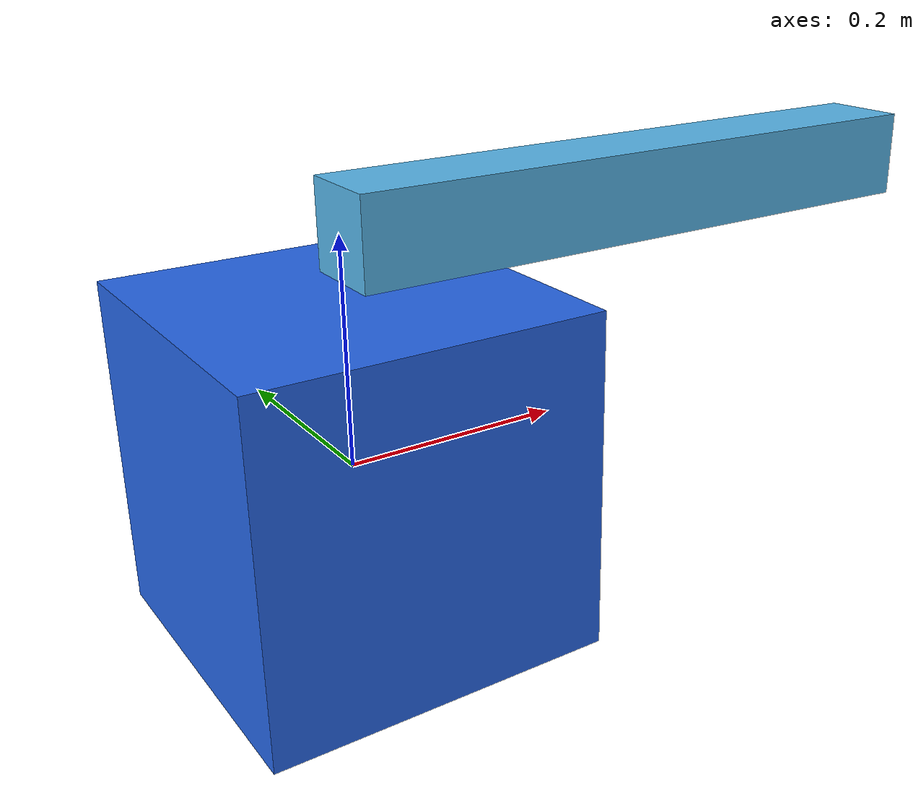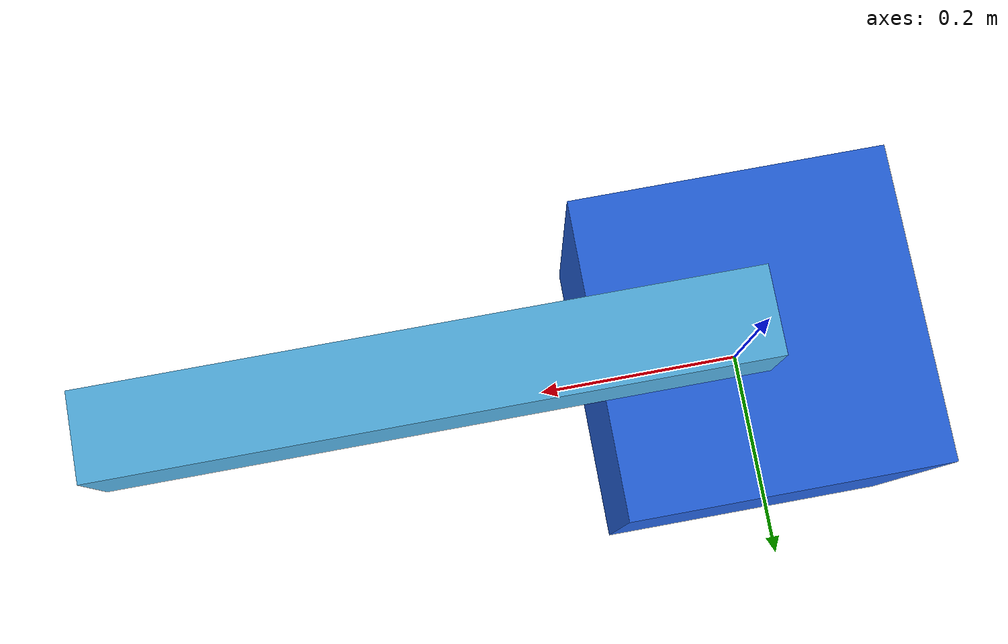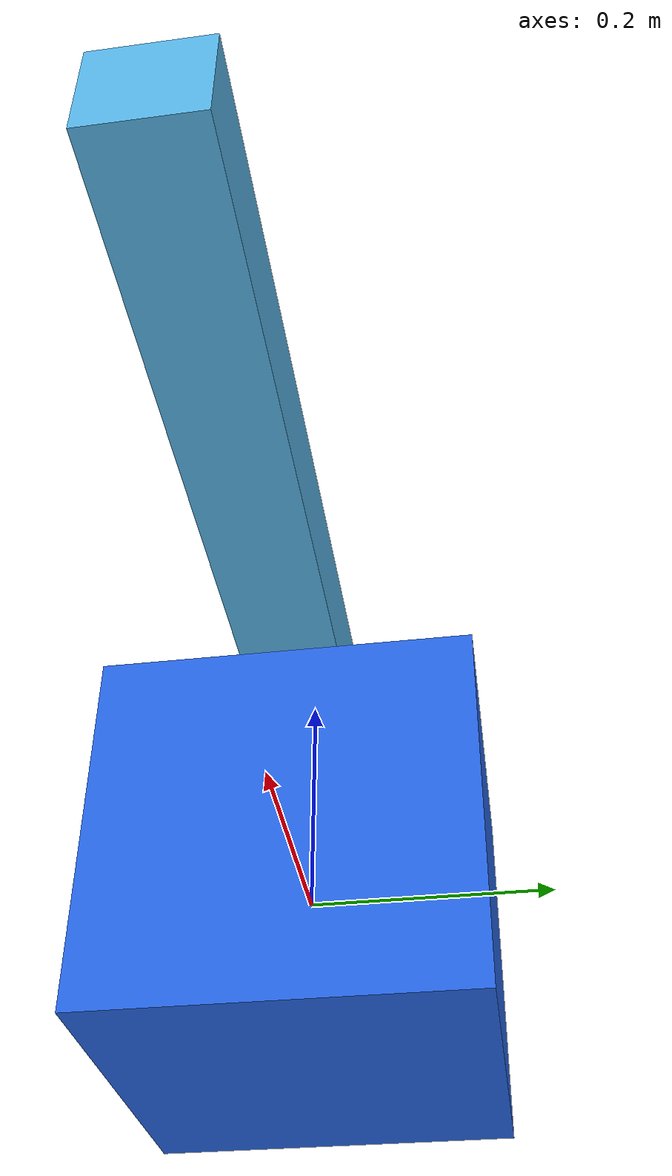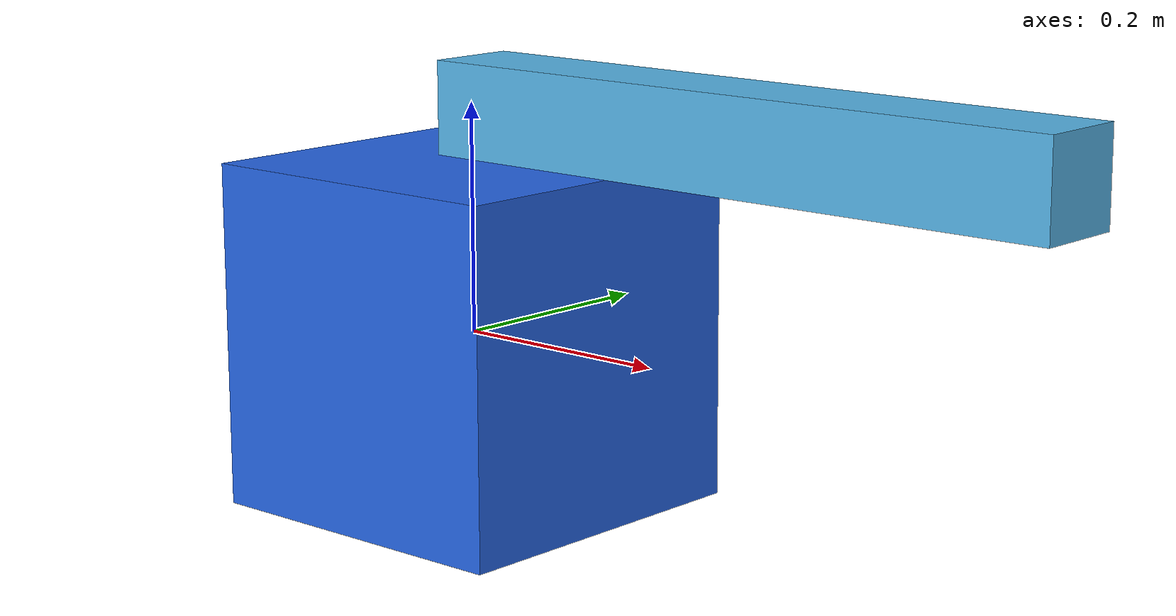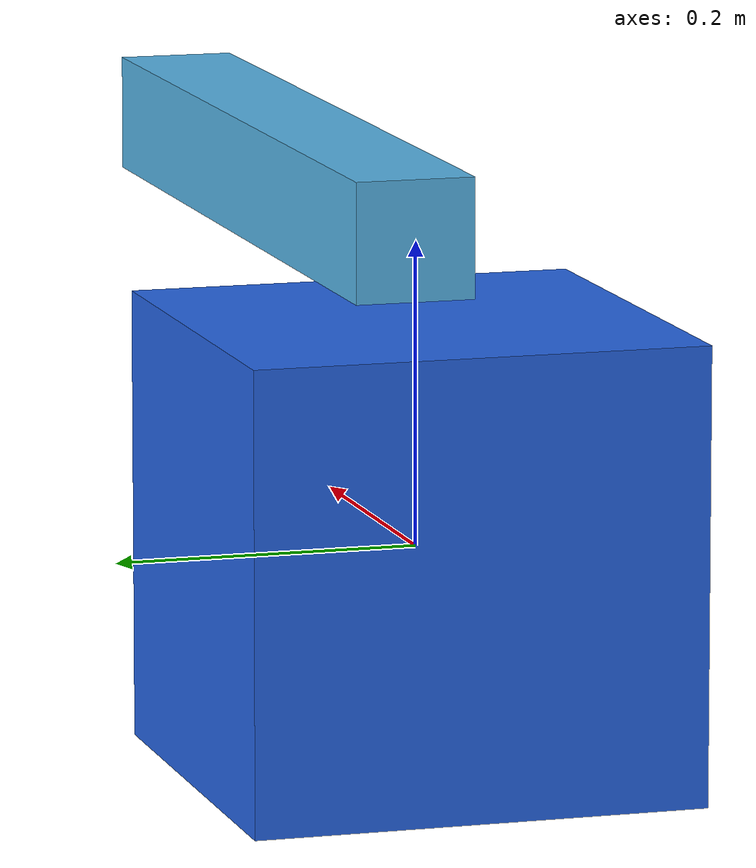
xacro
<?xml version="1.0"?>
<robot name="offline_xacro_demo" xmlns:xacro="http://www.ros.org/wiki/xacro">
  <xacro:property name="width" value="0.3"/>
  <link name="base_link"><visual><geometry><box size="${width} ${width} ${width}"/></geometry><material name="blue"><color rgba="0.15 0.4 0.9 1"/></material></visual></link>
  <link name="arm_link"><visual><origin xyz="0.3 0 0"/><geometry><box size="0.6 0.08 0.08"/></geometry></visual></link>
  <joint name="arm_joint" type="revolute"><parent link="base_link"/><child link="arm_link"/><origin xyz="0 0 0.2"/><axis xyz="0 0 1"/><limit lower="-1.57" upper="1.57" effort="10" velocity="1"/></joint>
</robot>
